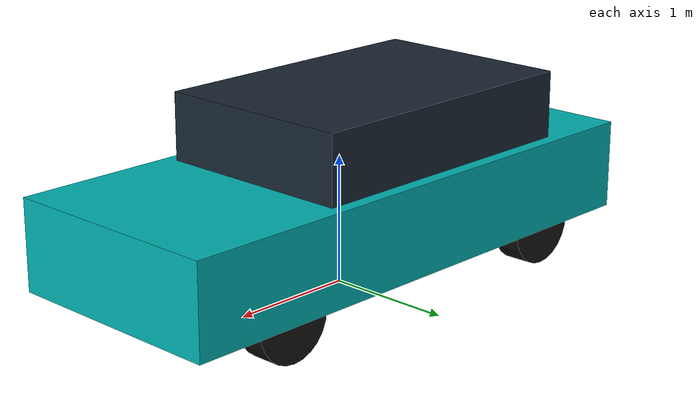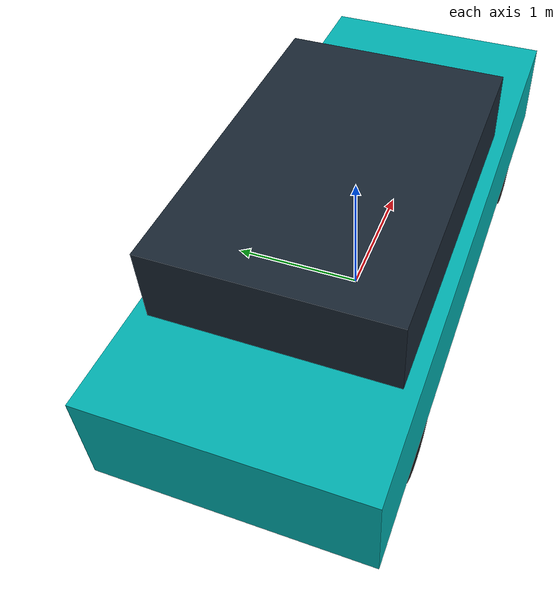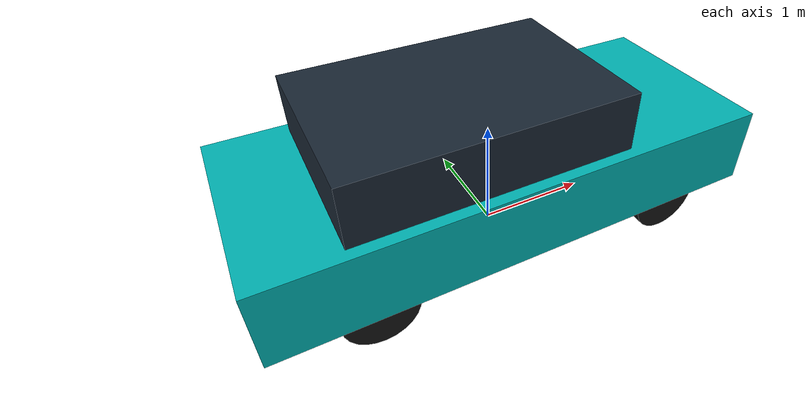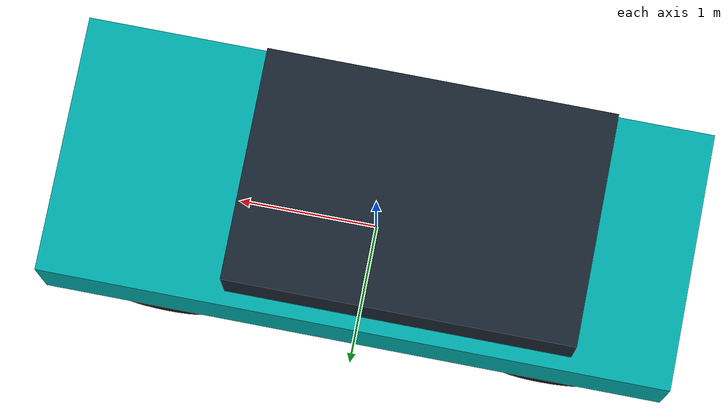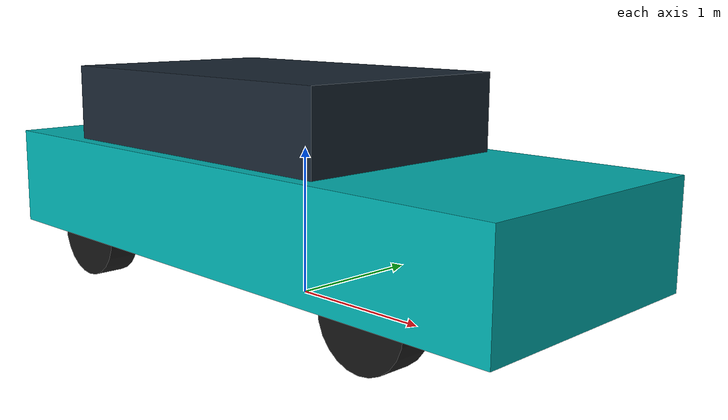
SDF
<?xml version="1.0"?>
<sdf version="1.9">
  <model name="ego_car">
    <pose>0.000 0.000 0.02 0 0 0.0000</pose>
    <link name="chassis">
      <pose>0 0 0.62 0 0 0</pose>
      <inertial><mass>1100</mass><pose>0 0 -0.1 0 0 0</pose>
        <inertia><ixx>420</ixx><iyy>1800</iyy><izz>2000</izz><ixy>0</ixy><ixz>0</ixz><iyz>0</iyz></inertia></inertial>
      <collision name="body"><geometry><box><size>4.4 1.8 0.7</size></box></geometry></collision>
      <visual name="body"><geometry><box><size>4.4 1.8 0.7</size></box></geometry>
        <material><ambient>0.000 0.702 0.702 1.0</ambient><diffuse>0.000 0.702 0.702 1.0</diffuse><specular>0.3 0.3 0.3 1</specular></material></visual>
      <visual name="cabin"><pose>-0.3 0 0.6 0 0 0</pose><geometry><box><size>2.4 1.6 0.55</size></box></geometry>
        <material><ambient>0.1 0.15 0.2 1</ambient><diffuse>0.1 0.15 0.2 1</diffuse></material></visual>

      <sensor name="front_camera" type="camera">
        <pose>1.3 0 0.65 0 0.05 0</pose>
        <always_on>1</always_on><update_rate>15</update_rate><visualize>true</visualize>
        <topic>camera</topic><gz_frame_id>camera_link</gz_frame_id>
        <camera><horizontal_fov>1.92</horizontal_fov>
          <image><width>1280</width><height>720</height><format>R8G8B8</format></image>
          <clip><near>0.1</near><far>150</far></clip></camera>
      </sensor>
      <sensor name="roof_lidar" type="gpu_lidar">
        <pose>0 0 1.3 0 0 0</pose>
        <always_on>1</always_on><update_rate>10</update_rate><visualize>false</visualize>
        <topic>lidar</topic><gz_frame_id>lidar_link</gz_frame_id>
        <lidar><scan>
          <horizontal><samples>900</samples><resolution>1</resolution><min_angle>-3.14159</min_angle><max_angle>3.14159</max_angle></horizontal>
          <vertical><samples>16</samples><resolution>1</resolution><min_angle>-0.26</min_angle><max_angle>0.26</max_angle></vertical>
        </scan><range><min>0.5</min><max>50</max><resolution>0.02</resolution></range></lidar>
      </sensor>
      <sensor name="imu" type="imu">
        <always_on>1</always_on><update_rate>100</update_rate><topic>imu</topic>
      </sensor>
    </link>

    <link name="front_left_steering_link">
      <pose>1.35 0.775 0.31 0 0 0</pose>
      <inertial><mass>2</mass><inertia><ixx>0.01</ixx><iyy>0.01</iyy><izz>0.01</izz>
        <ixy>0</ixy><ixz>0</ixz><iyz>0</iyz></inertia></inertial>
    </link>
    <joint name="front_left_steering_joint" type="revolute">
      <parent>chassis</parent><child>front_left_steering_link</child>
      <axis><xyz expressed_in="__model__">0 0 1</xyz><limit><lower>-0.6</lower><upper>0.6</upper><effort>1000</effort></limit></axis>
    </joint>
    <joint name="front_left_wheel_joint" type="revolute">
      <parent>front_left_steering_link</parent><child>front_left_wheel</child>
      <axis><xyz expressed_in="__model__">0 1 0</xyz><limit><lower>-1e16</lower><upper>1e16</upper></limit></axis>
    </joint>
    <link name="front_right_steering_link">
      <pose>1.35 -0.775 0.31 0 0 0</pose>
      <inertial><mass>2</mass><inertia><ixx>0.01</ixx><iyy>0.01</iyy><izz>0.01</izz>
        <ixy>0</ixy><ixz>0</ixz><iyz>0</iyz></inertia></inertial>
    </link>
    <joint name="front_right_steering_joint" type="revolute">
      <parent>chassis</parent><child>front_right_steering_link</child>
      <axis><xyz expressed_in="__model__">0 0 1</xyz><limit><lower>-0.6</lower><upper>0.6</upper><effort>1000</effort></limit></axis>
    </joint>
    <joint name="front_right_wheel_joint" type="revolute">
      <parent>front_right_steering_link</parent><child>front_right_wheel</child>
      <axis><xyz expressed_in="__model__">0 1 0</xyz><limit><lower>-1e16</lower><upper>1e16</upper></limit></axis>
    </joint>

    <link name="front_left_wheel">
      <pose>1.35 0.775 0.31 -1.5708 0 0</pose>
      <inertial><mass>15</mass><inertia><ixx>0.4</ixx><iyy>0.4</iyy><izz>0.72</izz>
        <ixy>0</ixy><ixz>0</ixz><iyz>0</iyz></inertia></inertial>
      <collision name="c"><geometry><cylinder><radius>0.31</radius><length>0.22</length></cylinder></geometry>
        <surface><friction><ode><mu>1.0</mu><mu2>1.0</mu2></ode></friction></surface></collision>
      <visual name="v"><geometry><cylinder><radius>0.31</radius><length>0.22</length></cylinder></geometry>
        <material><ambient>0.08 0.08 0.08 1</ambient><diffuse>0.08 0.08 0.08 1</diffuse></material></visual>
    </link>
    <link name="front_right_wheel">
      <pose>1.35 -0.775 0.31 -1.5708 0 0</pose>
      <inertial><mass>15</mass><inertia><ixx>0.4</ixx><iyy>0.4</iyy><izz>0.72</izz>
        <ixy>0</ixy><ixz>0</ixz><iyz>0</iyz></inertia></inertial>
      <collision name="c"><geometry><cylinder><radius>0.31</radius><length>0.22</length></cylinder></geometry>
        <surface><friction><ode><mu>1.0</mu><mu2>1.0</mu2></ode></friction></surface></collision>
      <visual name="v"><geometry><cylinder><radius>0.31</radius><length>0.22</length></cylinder></geometry>
        <material><ambient>0.08 0.08 0.08 1</ambient><diffuse>0.08 0.08 0.08 1</diffuse></material></visual>
    </link>
    <link name="rear_left_wheel">
      <pose>-1.35 0.775 0.31 -1.5708 0 0</pose>
      <inertial><mass>15</mass><inertia><ixx>0.4</ixx><iyy>0.4</iyy><izz>0.72</izz>
        <ixy>0</ixy><ixz>0</ixz><iyz>0</iyz></inertia></inertial>
      <collision name="c"><geometry><cylinder><radius>0.31</radius><length>0.22</length></cylinder></geometry>
        <surface><friction><ode><mu>1.0</mu><mu2>1.0</mu2></ode></friction></surface></collision>
      <visual name="v"><geometry><cylinder><radius>0.31</radius><length>0.22</length></cylinder></geometry>
        <material><ambient>0.08 0.08 0.08 1</ambient><diffuse>0.08 0.08 0.08 1</diffuse></material></visual>
    </link>
    <link name="rear_right_wheel">
      <pose>-1.35 -0.775 0.31 -1.5708 0 0</pose>
      <inertial><mass>15</mass><inertia><ixx>0.4</ixx><iyy>0.4</iyy><izz>0.72</izz>
        <ixy>0</ixy><ixz>0</ixz><iyz>0</iyz></inertia></inertial>
      <collision name="c"><geometry><cylinder><radius>0.31</radius><length>0.22</length></cylinder></geometry>
        <surface><friction><ode><mu>1.0</mu><mu2>1.0</mu2></ode></friction></surface></collision>
      <visual name="v"><geometry><cylinder><radius>0.31</radius><length>0.22</length></cylinder></geometry>
        <material><ambient>0.08 0.08 0.08 1</ambient><diffuse>0.08 0.08 0.08 1</diffuse></material></visual>
    </link>

    <joint name="rear_left_wheel_joint" type="revolute">
      <parent>chassis</parent><child>rear_left_wheel</child>
      <axis><xyz expressed_in="__model__">0 1 0</xyz><limit><lower>-1e16</lower><upper>1e16</upper></limit></axis>
    </joint>
    <joint name="rear_right_wheel_joint" type="revolute">
      <parent>chassis</parent><child>rear_right_wheel</child>
      <axis><xyz expressed_in="__model__">0 1 0</xyz><limit><lower>-1e16</lower><upper>1e16</upper></limit></axis>
    </joint>

    <plugin filename="gz-sim-ackermann-steering-system" name="gz::sim::systems::AckermannSteering">
      <left_joint>front_left_wheel_joint</left_joint>
      <left_joint>rear_left_wheel_joint</left_joint>
      <right_joint>front_right_wheel_joint</right_joint>
      <right_joint>rear_right_wheel_joint</right_joint>
      <left_steering_joint>front_left_steering_joint</left_steering_joint>
      <right_steering_joint>front_right_steering_joint</right_steering_joint>
      <kingpin_width>1.55</kingpin_width>
      <steering_limit>0.576</steering_limit>
      <wheel_base>2.7</wheel_base>
      <wheel_separation>1.55</wheel_separation>
      <wheel_radius>0.31</wheel_radius>
      <min_velocity>0</min_velocity>
      <max_velocity>25</max_velocity>
      <min_acceleration>-7.5</min_acceleration>
      <max_acceleration>2.5</max_acceleration>
    </plugin>
    <plugin filename="gz-sim-odometry-publisher-system" name="gz::sim::systems::OdometryPublisher">
      <odom_frame>world</odom_frame>
      <robot_base_frame>ego_car</robot_base_frame>
      <odom_topic>/ego/odom_gt</odom_topic>
      <tf_topic>/ego/tf</tf_topic>
      <odom_publish_frequency>50</odom_publish_frequency>
      <dimensions>2</dimensions>
    </plugin>
    <plugin filename="gz-sim-joint-state-publisher-system" name="gz::sim::systems::JointStatePublisher"/>
  </model>
</sdf>
